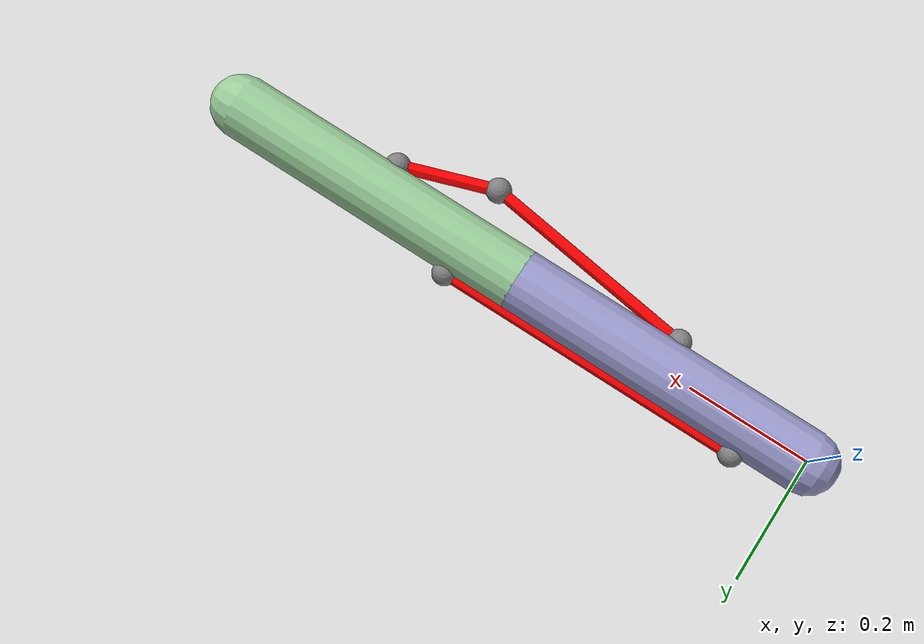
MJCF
<!-- two_link_muscle.xml (we will embed this as a Python string) -->
<mujoco model="two_link_muscle">
  <option timestep="0.002" gravity="0 0 -9.81"/>
  <worldbody>
    <!-- base -->
    <body name="base" pos="0 0 0">
      <!-- joint 1 -->
      <geom name="link1" type="capsule" fromto="0 0 0 0.5 0 0" size="0.05" rgba="0.6 0.6 0.8 1"/>
      <site name="l1_tendon_point_t1" pos="0.1 0.05 0" size="0.02" group="1"/>
      <site name="l1_tendon_point_t2" pos="0.25 -0.05 0" size="0.02" group="1"/>
      <site name="tip_tendon_point_t2" pos="0.6 -0.1 0" size="0.02" group="1"/>

      <!-- link2 -->
      <body name="link2" pos="0.5 0 0">
        <joint name="joint1" type="hinge" axis="0 0 1" pos="0 0 0" damping="0.1" range = "0.0 135.0"/>
        <geom name="link2_geom" type="capsule" fromto="0 0 0 0.5 0 0" size="0.05" rgba="0.6 0.8 0.6 1"/>

        <!-- small site near the tip (useful if you want to route tendons) -->
        <site name="l2_tendon_point_t1" pos="0.1 0.05 0" size="0.02" group="1"/>
        <site name="l2_tendon_point_t2" pos="0.25 -0.05 0" size="0.02" group="1"/>
      </body>

      <!-- sites used as tendon anchor points -->
    </body>
  </worldbody>

  <!-- tendons: spatial type that wraps around sites (very simple routing) -->
  <tendon>
    <spatial name="t_1" springlength="0.5" stiffness="0" damping="0.0" width="0.01" rgba="1 0 0 1">
      <site site="l1_tendon_point_t1"/>
      <site site="l2_tendon_point_t1"/>
    </spatial>
    <spatial name="t_2" springlength="0.5" stiffness="100" damping="0.0" width="0.01" rgba="1 0 0 1">
      <site site="l1_tendon_point_t2"/>
      <site site="tip_tendon_point_t2"/>
      <site site="l2_tendon_point_t2"/>
    </spatial>
  </tendon>

  <actuator>
    <muscle name="A" tendon="t_1" ctrlrange="0.0 1.0" force="50" />
  </actuator>

</mujoco>
